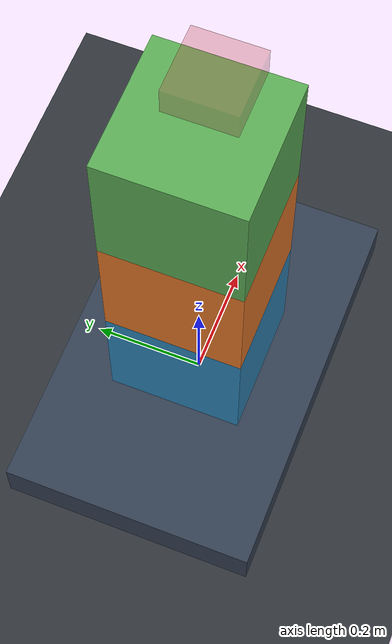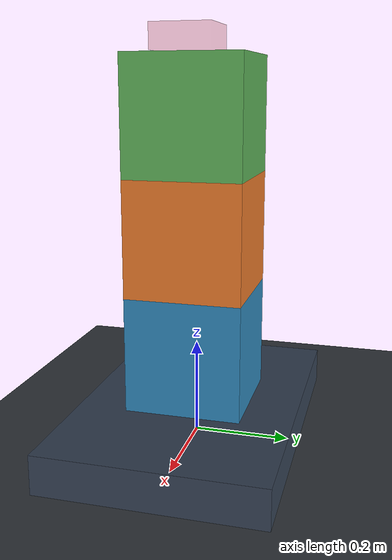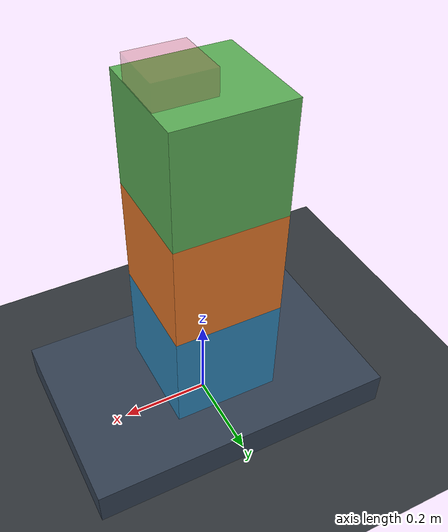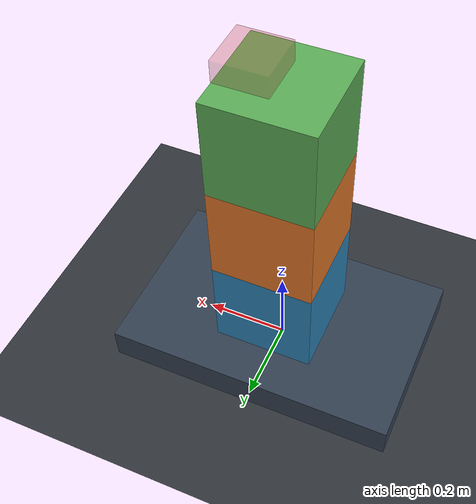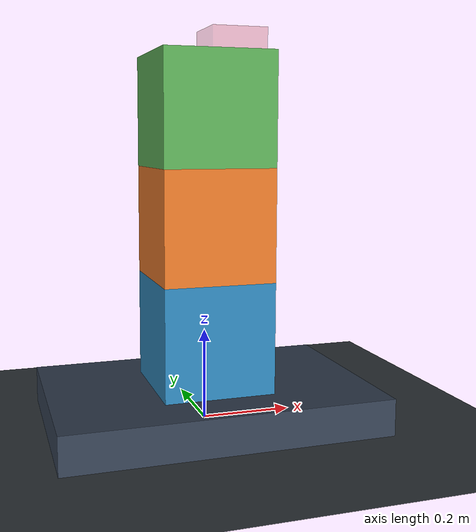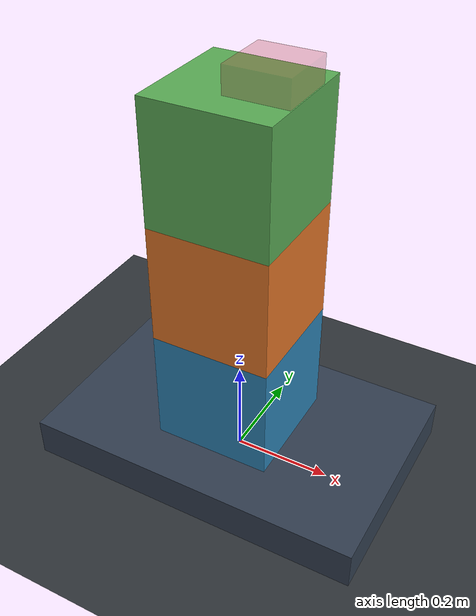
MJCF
<mujoco model="ModuBalance three intelligent modules">
  <compiler angle="degree" autolimits="true"/>
  <option timestep="0.002" gravity="0 0 -9.81" integrator="RK4"/>

  <default>
    <geom friction="0.8 0.01 0.001" condim="3"/>
    <joint damping="0.3" armature="0.015"/>
    <site size="0.010"/>
  </default>

  <visual>
    <headlight ambient="0.35 0.35 0.35" diffuse="0.75 0.75 0.75"/>
    <global azimuth="135" elevation="-15"/>
  </visual>

  <asset>
    <texture name="ground_tex" type="2d" builtin="checker" rgb1="0.16 0.18 0.20" rgb2="0.22 0.24 0.26" width="512" height="512"/>
    <material name="ground_mat" texture="ground_tex" texrepeat="4 4"/>
    <material name="platform_mat" rgba="0.20 0.25 0.32 1"/>
    <material name="cube_a_mat" rgba="0.18 0.52 0.72 1"/>
    <material name="cube_b_mat" rgba="0.90 0.47 0.16 1"/>
    <material name="cube_c_mat" rgba="0.36 0.68 0.34 1"/>
  </asset>

  <worldbody>
    <light pos="0 -2 3" dir="0 0 -1" directional="true"/>
    <geom name="ground" type="plane" size="5 5 0.1" material="ground_mat"/>

    <!-- Neutral stack world Z: platform 0.00-0.08, A 0.08-0.32,
         B 0.32-0.56, C 0.56-0.80, payload 0.802-0.852 m. -->
    <body name="platform" pos="0 0 0.04">
      <joint name="platform_slide" type="slide" axis="1 0 0" range="-1 1" damping="20"/>
      <geom name="platform_geom" type="box" size="0.35 0.225 0.04" mass="12" material="platform_mat"/>

      <body name="cube_a" pos="0 0 0.16">
        <geom name="cube_a_geom" type="box" size="0.12 0.12 0.12" mass="3" material="cube_a_mat"/>
        <site name="imu_A" pos="0 0 0" rgba="0 0 0 0"/>

        <!-- AB lower magnets: 1 front-left, 2 front-right, 3 rear-left, 4 rear-right. -->
        <site name="AB_lower_m1" pos="0.08 0.08 0.119" rgba="0.2 0.8 1 1"/>
        <site name="AB_lower_m2" pos="0.08 -0.08 0.119" rgba="0.2 0.8 1 1"/>
        <site name="AB_lower_m3" pos="-0.08 0.08 0.119" rgba="0.2 0.8 1 1"/>
        <site name="AB_lower_m4" pos="-0.08 -0.08 0.119" rgba="0.2 0.8 1 1"/>

        <!-- Co-located roll and pitch hinges form a two-axis connector at world z=0.32 m. -->
        <body name="frame_AB_roll" pos="0 0 0.12">
          <inertial pos="0 0 0" mass="0.001" diaginertia="0.000001 0.000001 0.000001"/>
          <joint name="joint_AB_roll" type="hinge" axis="1 0 0" range="-25 25" damping="0.30"/>
        <body name="cube_b" pos="0 0 0">
          <joint name="joint_AB" type="hinge" axis="0 1 0" range="-35 35" damping="0.40"/>
          <geom name="cube_b_geom" type="box" pos="0 0 0.12" size="0.12 0.12 0.12" mass="2" material="cube_b_mat"/>
          <site name="imu_B" pos="0 0 0.12" rgba="0 0 0 0"/>
          <site name="connector_AB_sensor" pos="0 0 0" rgba="1 1 0 0.5"/>
          <site name="AB_upper_m1" pos="0.08 0.08 0.001" rgba="1 0.3 0.2 1"/>
          <site name="AB_upper_m2" pos="0.08 -0.08 0.001" rgba="1 0.3 0.2 1"/>
          <site name="AB_upper_m3" pos="-0.08 0.08 0.001" rgba="1 0.3 0.2 1"/>
          <site name="AB_upper_m4" pos="-0.08 -0.08 0.001" rgba="1 0.3 0.2 1"/>

          <!-- BC lower magnets sit 1 mm below B's top surface. -->
          <site name="BC_lower_m1" pos="0.08 0.08 0.239" rgba="0.2 0.8 1 1"/>
          <site name="BC_lower_m2" pos="0.08 -0.08 0.239" rgba="0.2 0.8 1 1"/>
          <site name="BC_lower_m3" pos="-0.08 0.08 0.239" rgba="0.2 0.8 1 1"/>
          <site name="BC_lower_m4" pos="-0.08 -0.08 0.239" rgba="0.2 0.8 1 1"/>

          <!-- Co-located BC roll/pitch hinges are at B top / C bottom, world z=0.56 m. -->
          <body name="frame_BC_roll" pos="0 0 0.24">
            <inertial pos="0 0 0" mass="0.001" diaginertia="0.000001 0.000001 0.000001"/>
            <joint name="joint_BC_roll" type="hinge" axis="1 0 0" range="-25 25" damping="0.30"/>
          <body name="cube_c" pos="0 0 0">
            <joint name="joint_BC" type="hinge" axis="0 1 0" range="-35 35" damping="0.40"/>
            <geom name="cube_c_geom" type="box" pos="0 0 0.12" size="0.12 0.12 0.12" mass="2" material="cube_c_mat"/>
            <site name="imu_C" pos="0 0 0.12" rgba="0 0 0 0"/>
            <site name="connector_BC_sensor" pos="0 0 0" rgba="1 1 0 0.5"/>
            <site name="BC_upper_m1" pos="0.08 0.08 0.001" rgba="1 0.3 0.2 1"/>
            <site name="BC_upper_m2" pos="0.08 -0.08 0.001" rgba="1 0.3 0.2 1"/>
            <site name="BC_upper_m3" pos="-0.08 0.08 0.001" rgba="1 0.3 0.2 1"/>
            <site name="BC_upper_m4" pos="-0.08 -0.08 0.001" rgba="1 0.3 0.2 1"/>
            <site name="phase2_payload_site" pos="0.06 0 0.242" rgba="1 0 0 0.8"/>
            <geom name="phase2_payload_visual" type="box" pos="0.06 0 0.267" size="0.06 0.06 0.025"
                  mass="0" contype="0" conaffinity="0" rgba="0.72 0.18 0.20 0.28"/>
          </body>
          </body>
        </body>
        </body>
      </body>
    </body>
  </worldbody>

  <!-- Adjacent cube faces meet visually at connector interfaces, but must not
       create hidden frictional bracing; connector forces alone stabilize them. -->
  <contact>
    <exclude body1="cube_a" body2="cube_b"/>
    <exclude body1="cube_b" body2="cube_c"/>
  </contact>

  <!-- Runtime latch constraints. Hinges retain translation while these welds lock alignment. -->
  <equality>
    <weld name="latch_AB" body1="cube_a" body2="cube_b" active="false"/>
    <weld name="latch_BC" body1="cube_b" body2="cube_c" active="false"/>
  </equality>

  <actuator>
    <motor name="motor_AB" joint="joint_AB" gear="1" ctrllimited="true" ctrlrange="-12 12" forcelimited="true" forcerange="-12 12"/>
    <motor name="motor_AB_roll" joint="joint_AB_roll" gear="1" ctrllimited="true" ctrlrange="-12 12" forcelimited="true" forcerange="-12 12"/>
    <motor name="motor_BC" joint="joint_BC" gear="1" ctrllimited="true" ctrlrange="-12 12" forcelimited="true" forcerange="-12 12"/>
    <motor name="motor_BC_roll" joint="joint_BC_roll" gear="1" ctrllimited="true" ctrlrange="-12 12" forcelimited="true" forcerange="-12 12"/>
    <position name="platform_position_servo" joint="platform_slide" kp="800" kv="140"
              ctrllimited="true" ctrlrange="-1 1" forcelimited="true" forcerange="-250 250"/>
  </actuator>

  <sensor>
    <framequat name="orientation_A" objtype="site" objname="imu_A"/>
    <gyro name="angular_velocity_A" site="imu_A"/>
    <framequat name="orientation_B" objtype="site" objname="imu_B"/>
    <gyro name="angular_velocity_B" site="imu_B"/>
    <framequat name="orientation_C" objtype="site" objname="imu_C"/>
    <gyro name="angular_velocity_C" site="imu_C"/>
    <jointpos name="position_AB" joint="joint_AB"/>
    <jointvel name="velocity_AB" joint="joint_AB"/>
    <jointpos name="roll_position_AB" joint="joint_AB_roll"/>
    <jointvel name="roll_velocity_AB" joint="joint_AB_roll"/>
    <jointpos name="position_BC" joint="joint_BC"/>
    <jointvel name="velocity_BC" joint="joint_BC"/>
    <jointpos name="roll_position_BC" joint="joint_BC_roll"/>
    <jointvel name="roll_velocity_BC" joint="joint_BC_roll"/>
    <actuatorfrc name="actuator_force_AB" actuator="motor_AB"/>
    <actuatorfrc name="actuator_force_BC" actuator="motor_BC"/>
    <force name="force_AB" site="connector_AB_sensor"/>
    <torque name="torque_AB" site="connector_AB_sensor"/>
    <force name="force_BC" site="connector_BC_sensor"/>
    <torque name="torque_BC" site="connector_BC_sensor"/>
    <jointpos name="phase2_platform_position" joint="platform_slide"/>
    <jointvel name="phase2_platform_velocity" joint="platform_slide"/>
  </sensor>
</mujoco>
